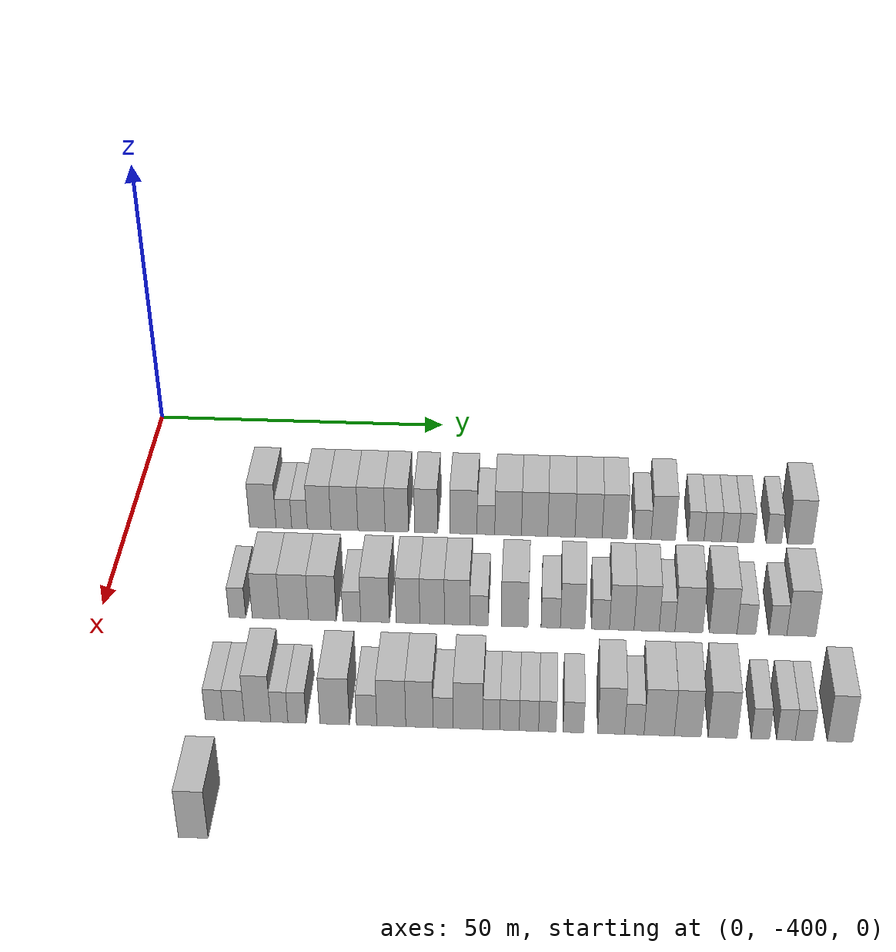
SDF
<sdf version="1.6">
 <world name="default">
  <model name="building_1">
   <static>1</static>
   <pose>25.0000 -377.8133 0 0.000000 0.000000 0.000000</pose>
   <link name="link">
    <pose>0 0 4.50 0 0 0</pose>
    <collision name="collision"><geometry><box><size>10.0000 4.3734 9.0000</size></box></geometry></collision>
    <visual name="visual">
     <cast_shadows>0</cast_shadows>
     <geometry><box><size>10.0000 4.3734 9.0000</size></box></geometry>
     <material>
      <script>
       <uri>model://HANNAS_wall/materials/scripts</uri>
       <uri>model://HANNAS_wall/materials/textures</uri>
       <name>vrc/HANNAS_wall</name>
      </script>
     </material>
    </visual>
   </link>
  </model>
  <model name="building_2">
   <static>1</static>
   <pose>25.0000 -374.3436 0 0.000000 0.000000 0.000000</pose>
   <link name="link">
    <pose>0 0 3.00 0 0 0</pose>
    <collision name="collision"><geometry><box><size>10.0000 2.5658 6.0000</size></box></geometry></collision>
    <visual name="visual">
     <cast_shadows>0</cast_shadows>
     <geometry><box><size>10.0000 2.5658 6.0000</size></box></geometry>
     <material>
      <script>
       <uri>model://HANNAS_wall/materials/scripts</uri>
       <uri>model://HANNAS_wall/materials/textures</uri>
       <name>vrc/HANNAS_wall</name>
      </script>
     </material>
    </visual>
   </link>
  </model>
  <model name="building_3">
   <static>1</static>
   <pose>25.0000 -371.7761 0 0.000000 0.000000 0.000000</pose>
   <link name="link">
    <pose>0 0 3.00 0 0 0</pose>
    <collision name="collision"><geometry><box><size>10.0000 2.5692 6.0000</size></box></geometry></collision>
    <visual name="visual">
     <cast_shadows>0</cast_shadows>
     <geometry><box><size>10.0000 2.5692 6.0000</size></box></geometry>
     <material>
      <script>
       <uri>model://HANNAS_wall/materials/scripts</uri>
       <uri>model://HANNAS_wall/materials/textures</uri>
       <name>vrc/HANNAS_wall</name>
      </script>
     </material>
    </visual>
   </link>
  </model>
  <model name="building_4">
   <static>1</static>
   <pose>25.0000 -368.5401 0 0.000000 0.000000 0.000000</pose>
   <link name="link">
    <pose>0 0 4.50 0 0 0</pose>
    <collision name="collision"><geometry><box><size>10.0000 3.9030 9.0000</size></box></geometry></collision>
    <visual name="visual">
     <cast_shadows>0</cast_shadows>
     <geometry><box><size>10.0000 3.9030 9.0000</size></box></geometry>
     <material>
      <script>
       <uri>model://HANNAS_wall/materials/scripts</uri>
       <uri>model://HANNAS_wall/materials/textures</uri>
       <name>vrc/HANNAS_wall</name>
      </script>
     </material>
    </visual>
   </link>
  </model>
  <model name="building_5">
   <static>1</static>
   <pose>25.0000 -364.3790 0 0.000000 0.000000 0.000000</pose>
   <link name="link">
    <pose>0 0 4.50 0 0 0</pose>
    <collision name="collision"><geometry><box><size>10.0000 4.4191 9.0000</size></box></geometry></collision>
    <visual name="visual">
     <cast_shadows>0</cast_shadows>
     <geometry><box><size>10.0000 4.4191 9.0000</size></box></geometry>
     <material>
      <script>
       <uri>model://HANNAS_wall/materials/scripts</uri>
       <uri>model://HANNAS_wall/materials/textures</uri>
       <name>vrc/HANNAS_wall</name>
      </script>
     </material>
    </visual>
   </link>
  </model>
  <model name="building_6">
   <static>1</static>
   <pose>25.0000 -359.9447 0 0.000000 0.000000 0.000000</pose>
   <link name="link">
    <pose>0 0 4.50 0 0 0</pose>
    <collision name="collision"><geometry><box><size>10.0000 4.4495 9.0000</size></box></geometry></collision>
    <visual name="visual">
     <cast_shadows>0</cast_shadows>
     <geometry><box><size>10.0000 4.4495 9.0000</size></box></geometry>
     <material>
      <script>
       <uri>model://HANNAS_wall/materials/scripts</uri>
       <uri>model://HANNAS_wall/materials/textures</uri>
       <name>vrc/HANNAS_wall</name>
      </script>
     </material>
    </visual>
   </link>
  </model>
  <model name="building_7">
   <static>1</static>
   <pose>25.0000 -355.7959 0 0.000000 0.000000 0.000000</pose>
   <link name="link">
    <pose>0 0 4.50 0 0 0</pose>
    <collision name="collision"><geometry><box><size>10.0000 3.8482 9.0000</size></box></geometry></collision>
    <visual name="visual">
     <cast_shadows>0</cast_shadows>
     <geometry><box><size>10.0000 3.8482 9.0000</size></box></geometry>
     <material>
      <script>
       <uri>model://HANNAS_wall/materials/scripts</uri>
       <uri>model://HANNAS_wall/materials/textures</uri>
       <name>vrc/HANNAS_wall</name>
      </script>
     </material>
    </visual>
   </link>
  </model>
  <model name="building_8">
   <static>1</static>
   <pose>25.0000 -350.9902 0 0.000000 0.000000 0.000000</pose>
   <link name="link">
    <pose>0 0 4.50 0 0 0</pose>
    <collision name="collision"><geometry><box><size>10.0000 3.7632 9.0000</size></box></geometry></collision>
    <visual name="visual">
     <cast_shadows>0</cast_shadows>
     <geometry><box><size>10.0000 3.7632 9.0000</size></box></geometry>
     <material>
      <script>
       <uri>model://HANNAS_wall/materials/scripts</uri>
       <uri>model://HANNAS_wall/materials/textures</uri>
       <name>vrc/HANNAS_wall</name>
      </script>
     </material>
    </visual>
   </link>
  </model>
  <model name="building_9">
   <static>1</static>
   <pose>25.0000 -344.8796 0 0.000000 0.000000 0.000000</pose>
   <link name="link">
    <pose>0 0 4.50 0 0 0</pose>
    <collision name="collision"><geometry><box><size>10.0000 4.4580 9.0000</size></box></geometry></collision>
    <visual name="visual">
     <cast_shadows>0</cast_shadows>
     <geometry><box><size>10.0000 4.4580 9.0000</size></box></geometry>
     <material>
      <script>
       <uri>model://HANNAS_wall/materials/scripts</uri>
       <uri>model://HANNAS_wall/materials/textures</uri>
       <name>vrc/HANNAS_wall</name>
      </script>
     </material>
    </visual>
   </link>
  </model>
  <model name="building_10">
   <static>1</static>
   <pose>25.0000 -341.2085 0 0.000000 0.000000 0.000000</pose>
   <link name="link">
    <pose>0 0 3.00 0 0 0</pose>
    <collision name="collision"><geometry><box><size>10.0000 2.8842 6.0000</size></box></geometry></collision>
    <visual name="visual">
     <cast_shadows>0</cast_shadows>
     <geometry><box><size>10.0000 2.8842 6.0000</size></box></geometry>
     <material>
      <script>
       <uri>model://HANNAS_wall/materials/scripts</uri>
       <uri>model://HANNAS_wall/materials/textures</uri>
       <name>vrc/HANNAS_wall</name>
      </script>
     </material>
    </visual>
   </link>
  </model>
  <model name="building_11">
   <static>1</static>
   <pose>25.0000 -337.5871 0 0.000000 0.000000 0.000000</pose>
   <link name="link">
    <pose>0 0 4.50 0 0 0</pose>
    <collision name="collision"><geometry><box><size>10.0000 4.3585 9.0000</size></box></geometry></collision>
    <visual name="visual">
     <cast_shadows>0</cast_shadows>
     <geometry><box><size>10.0000 4.3585 9.0000</size></box></geometry>
     <material>
      <script>
       <uri>model://HANNAS_wall/materials/scripts</uri>
       <uri>model://HANNAS_wall/materials/textures</uri>
       <name>vrc/HANNAS_wall</name>
      </script>
     </material>
    </visual>
   </link>
  </model>
  <model name="building_12">
   <static>1</static>
   <pose>25.0000 -333.2720 0 0.000000 0.000000 0.000000</pose>
   <link name="link">
    <pose>0 0 4.50 0 0 0</pose>
    <collision name="collision"><geometry><box><size>10.0000 4.2718 9.0000</size></box></geometry></collision>
    <visual name="visual">
     <cast_shadows>0</cast_shadows>
     <geometry><box><size>10.0000 4.2718 9.0000</size></box></geometry>
     <material>
      <script>
       <uri>model://HANNAS_wall/materials/scripts</uri>
       <uri>model://HANNAS_wall/materials/textures</uri>
       <name>vrc/HANNAS_wall</name>
      </script>
     </material>
    </visual>
   </link>
  </model>
  <model name="building_13">
   <static>1</static>
   <pose>25.0000 -328.9158 0 0.000000 0.000000 0.000000</pose>
   <link name="link">
    <pose>0 0 4.50 0 0 0</pose>
    <collision name="collision"><geometry><box><size>10.0000 4.4406 9.0000</size></box></geometry></collision>
    <visual name="visual">
     <cast_shadows>0</cast_shadows>
     <geometry><box><size>10.0000 4.4406 9.0000</size></box></geometry>
     <material>
      <script>
       <uri>model://HANNAS_wall/materials/scripts</uri>
       <uri>model://HANNAS_wall/materials/textures</uri>
       <name>vrc/HANNAS_wall</name>
      </script>
     </material>
    </visual>
   </link>
  </model>
  <model name="building_14">
   <static>1</static>
   <pose>25.0000 -324.4931 0 0.000000 0.000000 0.000000</pose>
   <link name="link">
    <pose>0 0 4.50 0 0 0</pose>
    <collision name="collision"><geometry><box><size>10.0000 4.4049 9.0000</size></box></geometry></collision>
    <visual name="visual">
     <cast_shadows>0</cast_shadows>
     <geometry><box><size>10.0000 4.4049 9.0000</size></box></geometry>
     <material>
      <script>
       <uri>model://HANNAS_wall/materials/scripts</uri>
       <uri>model://HANNAS_wall/materials/textures</uri>
       <name>vrc/HANNAS_wall</name>
      </script>
     </material>
    </visual>
   </link>
  </model>
  <model name="building_15">
   <static>1</static>
   <pose>25.0000 -320.2556 0 0.000000 0.000000 0.000000</pose>
   <link name="link">
    <pose>0 0 4.50 0 0 0</pose>
    <collision name="collision"><geometry><box><size>10.0000 4.0702 9.0000</size></box></geometry></collision>
    <visual name="visual">
     <cast_shadows>0</cast_shadows>
     <geometry><box><size>10.0000 4.0702 9.0000</size></box></geometry>
     <material>
      <script>
       <uri>model://HANNAS_wall/materials/scripts</uri>
       <uri>model://HANNAS_wall/materials/textures</uri>
       <name>vrc/HANNAS_wall</name>
      </script>
     </material>
    </visual>
   </link>
  </model>
  <model name="building_16">
   <static>1</static>
   <pose>25.0000 -315.7814 0 0.000000 0.000000 0.000000</pose>
   <link name="link">
    <pose>0 0 3.00 0 0 0</pose>
    <collision name="collision"><geometry><box><size>10.0000 2.8782 6.0000</size></box></geometry></collision>
    <visual name="visual">
     <cast_shadows>0</cast_shadows>
     <geometry><box><size>10.0000 2.8782 6.0000</size></box></geometry>
     <material>
      <script>
       <uri>model://HANNAS_wall/materials/scripts</uri>
       <uri>model://HANNAS_wall/materials/textures</uri>
       <name>vrc/HANNAS_wall</name>
      </script>
     </material>
    </visual>
   </link>
  </model>
  <model name="building_17">
   <static>1</static>
   <pose>25.0000 -312.3662 0 0.000000 0.000000 0.000000</pose>
   <link name="link">
    <pose>0 0 4.50 0 0 0</pose>
    <collision name="collision"><geometry><box><size>10.0000 3.9522 9.0000</size></box></geometry></collision>
    <visual name="visual">
     <cast_shadows>0</cast_shadows>
     <geometry><box><size>10.0000 3.9522 9.0000</size></box></geometry>
     <material>
      <script>
       <uri>model://HANNAS_wall/materials/scripts</uri>
       <uri>model://HANNAS_wall/materials/textures</uri>
       <name>vrc/HANNAS_wall</name>
      </script>
     </material>
    </visual>
   </link>
  </model>
  <model name="building_18">
   <static>1</static>
   <pose>25.0000 -307.0753 0 0.000000 0.000000 0.000000</pose>
   <link name="link">
    <pose>0 0 3.00 0 0 0</pose>
    <collision name="collision"><geometry><box><size>10.0000 2.6295 6.0000</size></box></geometry></collision>
    <visual name="visual">
     <cast_shadows>0</cast_shadows>
     <geometry><box><size>10.0000 2.6295 6.0000</size></box></geometry>
     <material>
      <script>
       <uri>model://HANNAS_wall/materials/scripts</uri>
       <uri>model://HANNAS_wall/materials/textures</uri>
       <name>vrc/HANNAS_wall</name>
      </script>
     </material>
    </visual>
   </link>
  </model>
  <model name="building_19">
   <static>1</static>
   <pose>25.0000 -304.3711 0 0.000000 0.000000 0.000000</pose>
   <link name="link">
    <pose>0 0 3.00 0 0 0</pose>
    <collision name="collision"><geometry><box><size>10.0000 2.7791 6.0000</size></box></geometry></collision>
    <visual name="visual">
     <cast_shadows>0</cast_shadows>
     <geometry><box><size>10.0000 2.7791 6.0000</size></box></geometry>
     <material>
      <script>
       <uri>model://HANNAS_wall/materials/scripts</uri>
       <uri>model://HANNAS_wall/materials/textures</uri>
       <name>vrc/HANNAS_wall</name>
      </script>
     </material>
    </visual>
   </link>
  </model>
  <model name="building_20">
   <static>1</static>
   <pose>25.0000 -301.6274 0 0.000000 0.000000 0.000000</pose>
   <link name="link">
    <pose>0 0 3.00 0 0 0</pose>
    <collision name="collision"><geometry><box><size>10.0000 2.7081 6.0000</size></box></geometry></collision>
    <visual name="visual">
     <cast_shadows>0</cast_shadows>
     <geometry><box><size>10.0000 2.7081 6.0000</size></box></geometry>
     <material>
      <script>
       <uri>model://HANNAS_wall/materials/scripts</uri>
       <uri>model://HANNAS_wall/materials/textures</uri>
       <name>vrc/HANNAS_wall</name>
      </script>
     </material>
    </visual>
   </link>
  </model>
  <model name="building_21">
   <static>1</static>
   <pose>25.0000 -298.9792 0 0.000000 0.000000 0.000000</pose>
   <link name="link">
    <pose>0 0 3.00 0 0 0</pose>
    <collision name="collision"><geometry><box><size>10.0000 2.5884 6.0000</size></box></geometry></collision>
    <visual name="visual">
     <cast_shadows>0</cast_shadows>
     <geometry><box><size>10.0000 2.5884 6.0000</size></box></geometry>
     <material>
      <script>
       <uri>model://HANNAS_wall/materials/scripts</uri>
       <uri>model://HANNAS_wall/materials/textures</uri>
       <name>vrc/HANNAS_wall</name>
      </script>
     </material>
    </visual>
   </link>
  </model>
  <model name="building_22">
   <static>1</static>
   <pose>25.0000 -294.4609 0 0.000000 0.000000 0.000000</pose>
   <link name="link">
    <pose>0 0 3.00 0 0 0</pose>
    <collision name="collision"><geometry><box><size>10.0000 2.4483 6.0000</size></box></geometry></collision>
    <visual name="visual">
     <cast_shadows>0</cast_shadows>
     <geometry><box><size>10.0000 2.4483 6.0000</size></box></geometry>
     <material>
      <script>
       <uri>model://HANNAS_wall/materials/scripts</uri>
       <uri>model://HANNAS_wall/materials/textures</uri>
       <name>vrc/HANNAS_wall</name>
      </script>
     </material>
    </visual>
   </link>
  </model>
  <model name="building_23">
   <static>1</static>
   <pose>25.0000 -290.2139 0 0.000000 0.000000 0.000000</pose>
   <link name="link">
    <pose>0 0 4.50 0 0 0</pose>
    <collision name="collision"><geometry><box><size>10.0000 4.0456 9.0000</size></box></geometry></collision>
    <visual name="visual">
     <cast_shadows>0</cast_shadows>
     <geometry><box><size>10.0000 4.0456 9.0000</size></box></geometry>
     <material>
      <script>
       <uri>model://HANNAS_wall/materials/scripts</uri>
       <uri>model://HANNAS_wall/materials/textures</uri>
       <name>vrc/HANNAS_wall</name>
      </script>
     </material>
    </visual>
   </link>
  </model>
  <model name="building_189">
   <static>1</static>
   <pose>47.0000 -378.6992 0 0.000000 0.000000 0.000000</pose>
   <link name="link">
    <pose>0 0 3.00 0 0 0</pose>
    <collision name="collision"><geometry><box><size>10.0000 2.6017 6.0000</size></box></geometry></collision>
    <visual name="visual">
     <cast_shadows>0</cast_shadows>
     <geometry><box><size>10.0000 2.6017 6.0000</size></box></geometry>
     <material>
      <script>
       <uri>model://HANNAS_wall/materials/scripts</uri>
       <uri>model://HANNAS_wall/materials/textures</uri>
       <name>vrc/HANNAS_wall</name>
      </script>
     </material>
    </visual>
   </link>
  </model>
  <model name="building_190">
   <static>1</static>
   <pose>47.0000 -374.2788 0 0.000000 0.000000 0.000000</pose>
   <link name="link">
    <pose>0 0 4.50 0 0 0</pose>
    <collision name="collision"><geometry><box><size>10.0000 4.2390 9.0000</size></box></geometry></collision>
    <visual name="visual">
     <cast_shadows>0</cast_shadows>
     <geometry><box><size>10.0000 4.2390 9.0000</size></box></geometry>
     <material>
      <script>
       <uri>model://HANNAS_wall/materials/scripts</uri>
       <uri>model://HANNAS_wall/materials/textures</uri>
       <name>vrc/HANNAS_wall</name>
      </script>
     </material>
    </visual>
   </link>
  </model>
  <model name="building_191">
   <static>1</static>
   <pose>47.0000 -369.9172 0 0.000000 0.000000 0.000000</pose>
   <link name="link">
    <pose>0 0 4.50 0 0 0</pose>
    <collision name="collision"><geometry><box><size>10.0000 4.4841 9.0000</size></box></geometry></collision>
    <visual name="visual">
     <cast_shadows>0</cast_shadows>
     <geometry><box><size>10.0000 4.4841 9.0000</size></box></geometry>
     <material>
      <script>
       <uri>model://HANNAS_wall/materials/scripts</uri>
       <uri>model://HANNAS_wall/materials/textures</uri>
       <name>vrc/HANNAS_wall</name>
      </script>
     </material>
    </visual>
   </link>
  </model>
  <model name="building_192">
   <static>1</static>
   <pose>47.0000 -365.5258 0 0.000000 0.000000 0.000000</pose>
   <link name="link">
    <pose>0 0 4.50 0 0 0</pose>
    <collision name="collision"><geometry><box><size>10.0000 4.2989 9.0000</size></box></geometry></collision>
    <visual name="visual">
     <cast_shadows>0</cast_shadows>
     <geometry><box><size>10.0000 4.2989 9.0000</size></box></geometry>
     <material>
      <script>
       <uri>model://HANNAS_wall/materials/scripts</uri>
       <uri>model://HANNAS_wall/materials/textures</uri>
       <name>vrc/HANNAS_wall</name>
      </script>
     </material>
    </visual>
   </link>
  </model>
  <model name="building_193">
   <static>1</static>
   <pose>47.0000 -360.9871 0 0.000000 0.000000 0.000000</pose>
   <link name="link">
    <pose>0 0 3.00 0 0 0</pose>
    <collision name="collision"><geometry><box><size>10.0000 2.7786 6.0000</size></box></geometry></collision>
    <visual name="visual">
     <cast_shadows>0</cast_shadows>
     <geometry><box><size>10.0000 2.7786 6.0000</size></box></geometry>
     <material>
      <script>
       <uri>model://HANNAS_wall/materials/scripts</uri>
       <uri>model://HANNAS_wall/materials/textures</uri>
       <name>vrc/HANNAS_wall</name>
      </script>
     </material>
    </visual>
   </link>
  </model>
  <model name="building_194">
   <static>1</static>
   <pose>47.0000 -357.3831 0 0.000000 0.000000 0.000000</pose>
   <link name="link">
    <pose>0 0 4.50 0 0 0</pose>
    <collision name="collision"><geometry><box><size>10.0000 4.4293 9.0000</size></box></geometry></collision>
    <visual name="visual">
     <cast_shadows>0</cast_shadows>
     <geometry><box><size>10.0000 4.4293 9.0000</size></box></geometry>
     <material>
      <script>
       <uri>model://HANNAS_wall/materials/scripts</uri>
       <uri>model://HANNAS_wall/materials/textures</uri>
       <name>vrc/HANNAS_wall</name>
      </script>
     </material>
    </visual>
   </link>
  </model>
  <model name="building_195">
   <static>1</static>
   <pose>47.0000 -352.3365 0 0.000000 0.000000 0.000000</pose>
   <link name="link">
    <pose>0 0 4.50 0 0 0</pose>
    <collision name="collision"><geometry><box><size>10.0000 3.6637 9.0000</size></box></geometry></collision>
    <visual name="visual">
     <cast_shadows>0</cast_shadows>
     <geometry><box><size>10.0000 3.6637 9.0000</size></box></geometry>
     <material>
      <script>
       <uri>model://HANNAS_wall/materials/scripts</uri>
       <uri>model://HANNAS_wall/materials/textures</uri>
       <name>vrc/HANNAS_wall</name>
      </script>
     </material>
    </visual>
   </link>
  </model>
  <model name="building_196">
   <static>1</static>
   <pose>47.0000 -348.6193 0 0.000000 0.000000 0.000000</pose>
   <link name="link">
    <pose>0 0 4.50 0 0 0</pose>
    <collision name="collision"><geometry><box><size>10.0000 3.7708 9.0000</size></box></geometry></collision>
    <visual name="visual">
     <cast_shadows>0</cast_shadows>
     <geometry><box><size>10.0000 3.7708 9.0000</size></box></geometry>
     <material>
      <script>
       <uri>model://HANNAS_wall/materials/scripts</uri>
       <uri>model://HANNAS_wall/materials/textures</uri>
       <name>vrc/HANNAS_wall</name>
      </script>
     </material>
    </visual>
   </link>
  </model>
  <model name="building_197">
   <static>1</static>
   <pose>47.0000 -344.7991 0 0.000000 0.000000 0.000000</pose>
   <link name="link">
    <pose>0 0 4.50 0 0 0</pose>
    <collision name="collision"><geometry><box><size>10.0000 3.8694 9.0000</size></box></geometry></collision>
    <visual name="visual">
     <cast_shadows>0</cast_shadows>
     <geometry><box><size>10.0000 3.8694 9.0000</size></box></geometry>
     <material>
      <script>
       <uri>model://HANNAS_wall/materials/scripts</uri>
       <uri>model://HANNAS_wall/materials/textures</uri>
       <name>vrc/HANNAS_wall</name>
      </script>
     </material>
    </visual>
   </link>
  </model>
  <model name="building_198">
   <static>1</static>
   <pose>47.0000 -341.4460 0 0.000000 0.000000 0.000000</pose>
   <link name="link">
    <pose>0 0 3.00 0 0 0</pose>
    <collision name="collision"><geometry><box><size>10.0000 2.8368 6.0000</size></box></geometry></collision>
    <visual name="visual">
     <cast_shadows>0</cast_shadows>
     <geometry><box><size>10.0000 2.8368 6.0000</size></box></geometry>
     <material>
      <script>
       <uri>model://HANNAS_wall/materials/scripts</uri>
       <uri>model://HANNAS_wall/materials/textures</uri>
       <name>vrc/HANNAS_wall</name>
      </script>
     </material>
    </visual>
   </link>
  </model>
  <model name="building_199">
   <static>1</static>
   <pose>47.0000 -335.9669 0 0.000000 0.000000 0.000000</pose>
   <link name="link">
    <pose>0 0 4.50 0 0 0</pose>
    <collision name="collision"><geometry><box><size>10.0000 4.1215 9.0000</size></box></geometry></collision>
    <visual name="visual">
     <cast_shadows>0</cast_shadows>
     <geometry><box><size>10.0000 4.1215 9.0000</size></box></geometry>
     <material>
      <script>
       <uri>model://HANNAS_wall/materials/scripts</uri>
       <uri>model://HANNAS_wall/materials/textures</uri>
       <name>vrc/HANNAS_wall</name>
      </script>
     </material>
    </visual>
   </link>
  </model>
  <model name="building_200">
   <static>1</static>
   <pose>47.0000 -330.4344 0 0.000000 0.000000 0.000000</pose>
   <link name="link">
    <pose>0 0 3.00 0 0 0</pose>
    <collision name="collision"><geometry><box><size>10.0000 2.9434 6.0000</size></box></geometry></collision>
    <visual name="visual">
     <cast_shadows>0</cast_shadows>
     <geometry><box><size>10.0000 2.9434 6.0000</size></box></geometry>
     <material>
      <script>
       <uri>model://HANNAS_wall/materials/scripts</uri>
       <uri>model://HANNAS_wall/materials/textures</uri>
       <name>vrc/HANNAS_wall</name>
      </script>
     </material>
    </visual>
   </link>
  </model>
  <model name="building_201">
   <static>1</static>
   <pose>47.0000 -327.0908 0 0.000000 0.000000 0.000000</pose>
   <link name="link">
    <pose>0 0 4.50 0 0 0</pose>
    <collision name="collision"><geometry><box><size>10.0000 3.7439 9.0000</size></box></geometry></collision>
    <visual name="visual">
     <cast_shadows>0</cast_shadows>
     <geometry><box><size>10.0000 3.7439 9.0000</size></box></geometry>
     <material>
      <script>
       <uri>model://HANNAS_wall/materials/scripts</uri>
       <uri>model://HANNAS_wall/materials/textures</uri>
       <name>vrc/HANNAS_wall</name>
      </script>
     </material>
    </visual>
   </link>
  </model>
  <model name="building_202">
   <static>1</static>
   <pose>47.0000 -322.8381 0 0.000000 0.000000 0.000000</pose>
   <link name="link">
    <pose>0 0 3.00 0 0 0</pose>
    <collision name="collision"><geometry><box><size>10.0000 2.7614 6.0000</size></box></geometry></collision>
    <visual name="visual">
     <cast_shadows>0</cast_shadows>
     <geometry><box><size>10.0000 2.7614 6.0000</size></box></geometry>
     <material>
      <script>
       <uri>model://HANNAS_wall/materials/scripts</uri>
       <uri>model://HANNAS_wall/materials/textures</uri>
       <name>vrc/HANNAS_wall</name>
      </script>
     </material>
    </visual>
   </link>
  </model>
  <model name="building_203">
   <static>1</static>
   <pose>47.0000 -319.5809 0 0.000000 0.000000 0.000000</pose>
   <link name="link">
    <pose>0 0 4.50 0 0 0</pose>
    <collision name="collision"><geometry><box><size>10.0000 3.7529 9.0000</size></box></geometry></collision>
    <visual name="visual">
     <cast_shadows>0</cast_shadows>
     <geometry><box><size>10.0000 3.7529 9.0000</size></box></geometry>
     <material>
      <script>
       <uri>model://HANNAS_wall/materials/scripts</uri>
       <uri>model://HANNAS_wall/materials/textures</uri>
       <name>vrc/HANNAS_wall</name>
      </script>
     </material>
    </visual>
   </link>
  </model>
  <model name="building_204">
   <static>1</static>
   <pose>47.0000 -315.7952 0 0.000000 0.000000 0.000000</pose>
   <link name="link">
    <pose>0 0 4.50 0 0 0</pose>
    <collision name="collision"><geometry><box><size>10.0000 3.8186 9.0000</size></box></geometry></collision>
    <visual name="visual">
     <cast_shadows>0</cast_shadows>
     <geometry><box><size>10.0000 3.8186 9.0000</size></box></geometry>
     <material>
      <script>
       <uri>model://HANNAS_wall/materials/scripts</uri>
       <uri>model://HANNAS_wall/materials/textures</uri>
       <name>vrc/HANNAS_wall</name>
      </script>
     </material>
    </visual>
   </link>
  </model>
  <model name="building_205">
   <static>1</static>
   <pose>47.0000 -312.6814 0 0.000000 0.000000 0.000000</pose>
   <link name="link">
    <pose>0 0 3.00 0 0 0</pose>
    <collision name="collision"><geometry><box><size>10.0000 2.4089 6.0000</size></box></geometry></collision>
    <visual name="visual">
     <cast_shadows>0</cast_shadows>
     <geometry><box><size>10.0000 2.4089 6.0000</size></box></geometry>
     <material>
      <script>
       <uri>model://HANNAS_wall/materials/scripts</uri>
       <uri>model://HANNAS_wall/materials/textures</uri>
       <name>vrc/HANNAS_wall</name>
      </script>
     </material>
    </visual>
   </link>
  </model>
  <model name="building_206">
   <static>1</static>
   <pose>47.0000 -309.3602 0 0.000000 0.000000 0.000000</pose>
   <link name="link">
    <pose>0 0 4.50 0 0 0</pose>
    <collision name="collision"><geometry><box><size>10.0000 4.2334 9.0000</size></box></geometry></collision>
    <visual name="visual">
     <cast_shadows>0</cast_shadows>
     <geometry><box><size>10.0000 4.2334 9.0000</size></box></geometry>
     <material>
      <script>
       <uri>model://HANNAS_wall/materials/scripts</uri>
       <uri>model://HANNAS_wall/materials/textures</uri>
       <name>vrc/HANNAS_wall</name>
      </script>
     </material>
    </visual>
   </link>
  </model>
  <model name="building_207">
   <static>1</static>
   <pose>47.0000 -304.1451 0 0.000000 0.000000 0.000000</pose>
   <link name="link">
    <pose>0 0 4.50 0 0 0</pose>
    <collision name="collision"><geometry><box><size>10.0000 4.1968 9.0000</size></box></geometry></collision>
    <visual name="visual">
     <cast_shadows>0</cast_shadows>
     <geometry><box><size>10.0000 4.1968 9.0000</size></box></geometry>
     <material>
      <script>
       <uri>model://HANNAS_wall/materials/scripts</uri>
       <uri>model://HANNAS_wall/materials/textures</uri>
       <name>vrc/HANNAS_wall</name>
      </script>
     </material>
    </visual>
   </link>
  </model>
  <model name="building_208">
   <static>1</static>
   <pose>47.0000 -300.6191 0 0.000000 0.000000 0.000000</pose>
   <link name="link">
    <pose>0 0 3.00 0 0 0</pose>
    <collision name="collision"><geometry><box><size>10.0000 2.8551 6.0000</size></box></geometry></collision>
    <visual name="visual">
     <cast_shadows>0</cast_shadows>
     <geometry><box><size>10.0000 2.8551 6.0000</size></box></geometry>
     <material>
      <script>
       <uri>model://HANNAS_wall/materials/scripts</uri>
       <uri>model://HANNAS_wall/materials/textures</uri>
       <name>vrc/HANNAS_wall</name>
      </script>
     </material>
    </visual>
   </link>
  </model>
  <model name="building_209">
   <static>1</static>
   <pose>47.0000 -295.8400 0 0.000000 0.000000 0.000000</pose>
   <link name="link">
    <pose>0 0 3.00 0 0 0</pose>
    <collision name="collision"><geometry><box><size>10.0000 2.7033 6.0000</size></box></geometry></collision>
    <visual name="visual">
     <cast_shadows>0</cast_shadows>
     <geometry><box><size>10.0000 2.7033 6.0000</size></box></geometry>
     <material>
      <script>
       <uri>model://HANNAS_wall/materials/scripts</uri>
       <uri>model://HANNAS_wall/materials/textures</uri>
       <name>vrc/HANNAS_wall</name>
      </script>
     </material>
    </visual>
   </link>
  </model>
  <model name="building_210">
   <static>1</static>
   <pose>47.0000 -292.3002 0 0.000000 0.000000 0.000000</pose>
   <link name="link">
    <pose>0 0 4.50 0 0 0</pose>
    <collision name="collision"><geometry><box><size>10.0000 4.3763 9.0000</size></box></geometry></collision>
    <visual name="visual">
     <cast_shadows>0</cast_shadows>
     <geometry><box><size>10.0000 4.3763 9.0000</size></box></geometry>
     <material>
      <script>
       <uri>model://HANNAS_wall/materials/scripts</uri>
       <uri>model://HANNAS_wall/materials/textures</uri>
       <name>vrc/HANNAS_wall</name>
      </script>
     </material>
    </visual>
   </link>
  </model>
  <model name="building_369">
   <static>1</static>
   <pose>69.0000 -378.6508 0 0.000000 0.000000 0.000000</pose>
   <link name="link">
    <pose>0 0 3.00 0 0 0</pose>
    <collision name="collision"><geometry><box><size>10.0000 2.6985 6.0000</size></box></geometry></collision>
    <visual name="visual">
     <cast_shadows>0</cast_shadows>
     <geometry><box><size>10.0000 2.6985 6.0000</size></box></geometry>
     <material>
      <script>
       <uri>model://HANNAS_wall/materials/scripts</uri>
       <uri>model://HANNAS_wall/materials/textures</uri>
       <name>vrc/HANNAS_wall</name>
      </script>
     </material>
    </visual>
   </link>
  </model>
  <model name="building_370">
   <static>1</static>
   <pose>69.0000 -375.8182 0 0.000000 0.000000 0.000000</pose>
   <link name="link">
    <pose>0 0 3.00 0 0 0</pose>
    <collision name="collision"><geometry><box><size>10.0000 2.9665 6.0000</size></box></geometry></collision>
    <visual name="visual">
     <cast_shadows>0</cast_shadows>
     <geometry><box><size>10.0000 2.9665 6.0000</size></box></geometry>
     <material>
      <script>
       <uri>model://HANNAS_wall/materials/scripts</uri>
       <uri>model://HANNAS_wall/materials/textures</uri>
       <name>vrc/HANNAS_wall</name>
      </script>
     </material>
    </visual>
   </link>
  </model>
  <model name="building_371">
   <static>1</static>
   <pose>69.0000 -372.4311 0 0.000000 0.000000 0.000000</pose>
   <link name="link">
    <pose>0 0 4.50 0 0 0</pose>
    <collision name="collision"><geometry><box><size>10.0000 3.8079 9.0000</size></box></geometry></collision>
    <visual name="visual">
     <cast_shadows>0</cast_shadows>
     <geometry><box><size>10.0000 3.8079 9.0000</size></box></geometry>
     <material>
      <script>
       <uri>model://HANNAS_wall/materials/scripts</uri>
       <uri>model://HANNAS_wall/materials/textures</uri>
       <name>vrc/HANNAS_wall</name>
      </script>
     </material>
    </visual>
   </link>
  </model>
  <model name="building_372">
   <static>1</static>
   <pose>69.0000 -369.2811 0 0.000000 0.000000 0.000000</pose>
   <link name="link">
    <pose>0 0 3.00 0 0 0</pose>
    <collision name="collision"><geometry><box><size>10.0000 2.4921 6.0000</size></box></geometry></collision>
    <visual name="visual">
     <cast_shadows>0</cast_shadows>
     <geometry><box><size>10.0000 2.4921 6.0000</size></box></geometry>
     <material>
      <script>
       <uri>model://HANNAS_wall/materials/scripts</uri>
       <uri>model://HANNAS_wall/materials/textures</uri>
       <name>vrc/HANNAS_wall</name>
      </script>
     </material>
    </visual>
   </link>
  </model>
  <model name="building_373">
   <static>1</static>
   <pose>69.0000 -366.7171 0 0.000000 0.000000 0.000000</pose>
   <link name="link">
    <pose>0 0 3.00 0 0 0</pose>
    <collision name="collision"><geometry><box><size>10.0000 2.6359 6.0000</size></box></geometry></collision>
    <visual name="visual">
     <cast_shadows>0</cast_shadows>
     <geometry><box><size>10.0000 2.6359 6.0000</size></box></geometry>
     <material>
      <script>
       <uri>model://HANNAS_wall/materials/scripts</uri>
       <uri>model://HANNAS_wall/materials/textures</uri>
       <name>vrc/HANNAS_wall</name>
      </script>
     </material>
    </visual>
   </link>
  </model>
  <model name="building_374">
   <static>1</static>
   <pose>69.0000 -361.2681 0 0.000000 0.000000 0.000000</pose>
   <link name="link">
    <pose>0 0 4.50 0 0 0</pose>
    <collision name="collision"><geometry><box><size>10.0000 4.2621 9.0000</size></box></geometry></collision>
    <visual name="visual">
     <cast_shadows>0</cast_shadows>
     <geometry><box><size>10.0000 4.2621 9.0000</size></box></geometry>
     <material>
      <script>
       <uri>model://HANNAS_wall/materials/scripts</uri>
       <uri>model://HANNAS_wall/materials/textures</uri>
       <name>vrc/HANNAS_wall</name>
      </script>
     </material>
    </visual>
   </link>
  </model>
  <model name="building_375">
   <static>1</static>
   <pose>69.0000 -356.6645 0 0.000000 0.000000 0.000000</pose>
   <link name="link">
    <pose>0 0 3.00 0 0 0</pose>
    <collision name="collision"><geometry><box><size>10.0000 2.9451 6.0000</size></box></geometry></collision>
    <visual name="visual">
     <cast_shadows>0</cast_shadows>
     <geometry><box><size>10.0000 2.9451 6.0000</size></box></geometry>
     <material>
      <script>
       <uri>model://HANNAS_wall/materials/scripts</uri>
       <uri>model://HANNAS_wall/materials/textures</uri>
       <name>vrc/HANNAS_wall</name>
      </script>
     </material>
    </visual>
   </link>
  </model>
  <model name="building_376">
   <static>1</static>
   <pose>69.0000 -353.1057 0 0.000000 0.000000 0.000000</pose>
   <link name="link">
    <pose>0 0 4.50 0 0 0</pose>
    <collision name="collision"><geometry><box><size>10.0000 4.1725 9.0000</size></box></geometry></collision>
    <visual name="visual">
     <cast_shadows>0</cast_shadows>
     <geometry><box><size>10.0000 4.1725 9.0000</size></box></geometry>
     <material>
      <script>
       <uri>model://HANNAS_wall/materials/scripts</uri>
       <uri>model://HANNAS_wall/materials/textures</uri>
       <name>vrc/HANNAS_wall</name>
      </script>
     </material>
    </visual>
   </link>
  </model>
  <model name="building_377">
   <static>1</static>
   <pose>69.0000 -349.0631 0 0.000000 0.000000 0.000000</pose>
   <link name="link">
    <pose>0 0 4.50 0 0 0</pose>
    <collision name="collision"><geometry><box><size>10.0000 3.9126 9.0000</size></box></geometry></collision>
    <visual name="visual">
     <cast_shadows>0</cast_shadows>
     <geometry><box><size>10.0000 3.9126 9.0000</size></box></geometry>
     <material>
      <script>
       <uri>model://HANNAS_wall/materials/scripts</uri>
       <uri>model://HANNAS_wall/materials/textures</uri>
       <name>vrc/HANNAS_wall</name>
      </script>
     </material>
    </visual>
   </link>
  </model>
  <model name="building_378">
   <static>1</static>
   <pose>69.0000 -345.6571 0 0.000000 0.000000 0.000000</pose>
   <link name="link">
    <pose>0 0 3.00 0 0 0</pose>
    <collision name="collision"><geometry><box><size>10.0000 2.8993 6.0000</size></box></geometry></collision>
    <visual name="visual">
     <cast_shadows>0</cast_shadows>
     <geometry><box><size>10.0000 2.8993 6.0000</size></box></geometry>
     <material>
      <script>
       <uri>model://HANNAS_wall/materials/scripts</uri>
       <uri>model://HANNAS_wall/materials/textures</uri>
       <name>vrc/HANNAS_wall</name>
      </script>
     </material>
    </visual>
   </link>
  </model>
  <model name="building_379">
   <static>1</static>
   <pose>69.0000 -342.0660 0 0.000000 0.000000 0.000000</pose>
   <link name="link">
    <pose>0 0 4.50 0 0 0</pose>
    <collision name="collision"><geometry><box><size>10.0000 4.2829 9.0000</size></box></geometry></collision>
    <visual name="visual">
     <cast_shadows>0</cast_shadows>
     <geometry><box><size>10.0000 4.2829 9.0000</size></box></geometry>
     <material>
      <script>
       <uri>model://HANNAS_wall/materials/scripts</uri>
       <uri>model://HANNAS_wall/materials/textures</uri>
       <name>vrc/HANNAS_wall</name>
      </script>
     </material>
    </visual>
   </link>
  </model>
  <model name="building_380">
   <static>1</static>
   <pose>69.0000 -338.7169 0 0.000000 0.000000 0.000000</pose>
   <link name="link">
    <pose>0 0 3.00 0 0 0</pose>
    <collision name="collision"><geometry><box><size>10.0000 2.4152 6.0000</size></box></geometry></collision>
    <visual name="visual">
     <cast_shadows>0</cast_shadows>
     <geometry><box><size>10.0000 2.4152 6.0000</size></box></geometry>
     <material>
      <script>
       <uri>model://HANNAS_wall/materials/scripts</uri>
       <uri>model://HANNAS_wall/materials/textures</uri>
       <name>vrc/HANNAS_wall</name>
      </script>
     </material>
    </visual>
   </link>
  </model>
  <model name="building_381">
   <static>1</static>
   <pose>69.0000 -336.1175 0 0.000000 0.000000 0.000000</pose>
   <link name="link">
    <pose>0 0 3.00 0 0 0</pose>
    <collision name="collision"><geometry><box><size>10.0000 2.7835 6.0000</size></box></geometry></collision>
    <visual name="visual">
     <cast_shadows>0</cast_shadows>
     <geometry><box><size>10.0000 2.7835 6.0000</size></box></geometry>
     <material>
      <script>
       <uri>model://HANNAS_wall/materials/scripts</uri>
       <uri>model://HANNAS_wall/materials/textures</uri>
       <name>vrc/HANNAS_wall</name>
      </script>
     </material>
    </visual>
   </link>
  </model>
  <model name="building_382">
   <static>1</static>
   <pose>69.0000 -333.3422 0 0.000000 0.000000 0.000000</pose>
   <link name="link">
    <pose>0 0 3.00 0 0 0</pose>
    <collision name="collision"><geometry><box><size>10.0000 2.7671 6.0000</size></box></geometry></collision>
    <visual name="visual">
     <cast_shadows>0</cast_shadows>
     <geometry><box><size>10.0000 2.7671 6.0000</size></box></geometry>
     <material>
      <script>
       <uri>model://HANNAS_wall/materials/scripts</uri>
       <uri>model://HANNAS_wall/materials/textures</uri>
       <name>vrc/HANNAS_wall</name>
      </script>
     </material>
    </visual>
   </link>
  </model>
  <model name="building_383">
   <static>1</static>
   <pose>69.0000 -330.7086 0 0.000000 0.000000 0.000000</pose>
   <link name="link">
    <pose>0 0 3.00 0 0 0</pose>
    <collision name="collision"><geometry><box><size>10.0000 2.5001 6.0000</size></box></geometry></collision>
    <visual name="visual">
     <cast_shadows>0</cast_shadows>
     <geometry><box><size>10.0000 2.5001 6.0000</size></box></geometry>
     <material>
      <script>
       <uri>model://HANNAS_wall/materials/scripts</uri>
       <uri>model://HANNAS_wall/materials/textures</uri>
       <name>vrc/HANNAS_wall</name>
      </script>
     </material>
    </visual>
   </link>
  </model>
  <model name="building_384">
   <static>1</static>
   <pose>69.0000 -326.9874 0 0.000000 0.000000 0.000000</pose>
   <link name="link">
    <pose>0 0 3.00 0 0 0</pose>
    <collision name="collision"><geometry><box><size>10.0000 2.9423 6.0000</size></box></geometry></collision>
    <visual name="visual">
     <cast_shadows>0</cast_shadows>
     <geometry><box><size>10.0000 2.9423 6.0000</size></box></geometry>
     <material>
      <script>
       <uri>model://HANNAS_wall/materials/scripts</uri>
       <uri>model://HANNAS_wall/materials/textures</uri>
       <name>vrc/HANNAS_wall</name>
      </script>
     </material>
    </visual>
   </link>
  </model>
  <model name="building_385">
   <static>1</static>
   <pose>69.0000 -321.5907 0 0.000000 0.000000 0.000000</pose>
   <link name="link">
    <pose>0 0 4.50 0 0 0</pose>
    <collision name="collision"><geometry><box><size>10.0000 3.8512 9.0000</size></box></geometry></collision>
    <visual name="visual">
     <cast_shadows>0</cast_shadows>
     <geometry><box><size>10.0000 3.8512 9.0000</size></box></geometry>
     <material>
      <script>
       <uri>model://HANNAS_wall/materials/scripts</uri>
       <uri>model://HANNAS_wall/materials/textures</uri>
       <name>vrc/HANNAS_wall</name>
      </script>
     </material>
    </visual>
   </link>
  </model>
  <model name="building_386">
   <static>1</static>
   <pose>69.0000 -318.2784 0 0.000000 0.000000 0.000000</pose>
   <link name="link">
    <pose>0 0 3.00 0 0 0</pose>
    <collision name="collision"><geometry><box><size>10.0000 2.7734 6.0000</size></box></geometry></collision>
    <visual name="visual">
     <cast_shadows>0</cast_shadows>
     <geometry><box><size>10.0000 2.7734 6.0000</size></box></geometry>
     <material>
      <script>
       <uri>model://HANNAS_wall/materials/scripts</uri>
       <uri>model://HANNAS_wall/materials/textures</uri>
       <name>vrc/HANNAS_wall</name>
      </script>
     </material>
    </visual>
   </link>
  </model>
  <model name="building_387">
   <static>1</static>
   <pose>69.0000 -314.7357 0 0.000000 0.000000 0.000000</pose>
   <link name="link">
    <pose>0 0 4.50 0 0 0</pose>
    <collision name="collision"><geometry><box><size>10.0000 4.3121 9.0000</size></box></geometry></collision>
    <visual name="visual">
     <cast_shadows>0</cast_shadows>
     <geometry><box><size>10.0000 4.3121 9.0000</size></box></geometry>
     <material>
      <script>
       <uri>model://HANNAS_wall/materials/scripts</uri>
       <uri>model://HANNAS_wall/materials/textures</uri>
       <name>vrc/HANNAS_wall</name>
      </script>
     </material>
    </visual>
   </link>
  </model>
  <model name="building_388">
   <static>1</static>
   <pose>69.0000 -310.6704 0 0.000000 0.000000 0.000000</pose>
   <link name="link">
    <pose>0 0 4.50 0 0 0</pose>
    <collision name="collision"><geometry><box><size>10.0000 3.8184 9.0000</size></box></geometry></collision>
    <visual name="visual">
     <cast_shadows>0</cast_shadows>
     <geometry><box><size>10.0000 3.8184 9.0000</size></box></geometry>
     <material>
      <script>
       <uri>model://HANNAS_wall/materials/scripts</uri>
       <uri>model://HANNAS_wall/materials/textures</uri>
       <name>vrc/HANNAS_wall</name>
      </script>
     </material>
    </visual>
   </link>
  </model>
  <model name="building_389">
   <static>1</static>
   <pose>69.0000 -305.6997 0 0.000000 0.000000 0.000000</pose>
   <link name="link">
    <pose>0 0 4.50 0 0 0</pose>
    <collision name="collision"><geometry><box><size>10.0000 4.1231 9.0000</size></box></geometry></collision>
    <visual name="visual">
     <cast_shadows>0</cast_shadows>
     <geometry><box><size>10.0000 4.1231 9.0000</size></box></geometry>
     <material>
      <script>
       <uri>model://HANNAS_wall/materials/scripts</uri>
       <uri>model://HANNAS_wall/materials/textures</uri>
       <name>vrc/HANNAS_wall</name>
      </script>
     </material>
    </visual>
   </link>
  </model>
  <model name="building_390">
   <static>1</static>
   <pose>69.0000 -300.3395 0 0.000000 0.000000 0.000000</pose>
   <link name="link">
    <pose>0 0 3.00 0 0 0</pose>
    <collision name="collision"><geometry><box><size>10.0000 2.5973 6.0000</size></box></geometry></collision>
    <visual name="visual">
     <cast_shadows>0</cast_shadows>
     <geometry><box><size>10.0000 2.5973 6.0000</size></box></geometry>
     <material>
      <script>
       <uri>model://HANNAS_wall/materials/scripts</uri>
       <uri>model://HANNAS_wall/materials/textures</uri>
       <name>vrc/HANNAS_wall</name>
      </script>
     </material>
    </visual>
   </link>
  </model>
  <model name="building_391">
   <static>1</static>
   <pose>69.0000 -296.7202 0 0.000000 0.000000 0.000000</pose>
   <link name="link">
    <pose>0 0 3.00 0 0 0</pose>
    <collision name="collision"><geometry><box><size>10.0000 2.6412 6.0000</size></box></geometry></collision>
    <visual name="visual">
     <cast_shadows>0</cast_shadows>
     <geometry><box><size>10.0000 2.6412 6.0000</size></box></geometry>
     <material>
      <script>
       <uri>model://HANNAS_wall/materials/scripts</uri>
       <uri>model://HANNAS_wall/materials/textures</uri>
       <name>vrc/HANNAS_wall</name>
      </script>
     </material>
    </visual>
   </link>
  </model>
  <model name="building_392">
   <static>1</static>
   <pose>69.0000 -294.1322 0 0.000000 0.000000 0.000000</pose>
   <link name="link">
    <pose>0 0 3.00 0 0 0</pose>
    <collision name="collision"><geometry><box><size>10.0000 2.5347 6.0000</size></box></geometry></collision>
    <visual name="visual">
     <cast_shadows>0</cast_shadows>
     <geometry><box><size>10.0000 2.5347 6.0000</size></box></geometry>
     <material>
      <script>
       <uri>model://HANNAS_wall/materials/scripts</uri>
       <uri>model://HANNAS_wall/materials/textures</uri>
       <name>vrc/HANNAS_wall</name>
      </script>
     </material>
    </visual>
   </link>
  </model>
  <model name="building_393">
   <static>1</static>
   <pose>69.0000 -289.0631 0 0.000000 0.000000 0.000000</pose>
   <link name="link">
    <pose>0 0 4.50 0 0 0</pose>
    <collision name="collision"><geometry><box><size>10.0000 3.6036 9.0000</size></box></geometry></collision>
    <visual name="visual">
     <cast_shadows>0</cast_shadows>
     <geometry><box><size>10.0000 3.6036 9.0000</size></box></geometry>
     <material>
      <script>
       <uri>model://HANNAS_wall/materials/scripts</uri>
       <uri>model://HANNAS_wall/materials/textures</uri>
       <name>vrc/HANNAS_wall</name>
      </script>
     </material>
    </visual>
   </link>
  </model>
  <model name="building_554">
   <static>1</static>
   <pose>91.0000 -377.9903 0 0.000000 0.000000 0.000000</pose>
   <link name="link">
    <pose>0 0 4.50 0 0 0</pose>
    <collision name="collision"><geometry><box><size>10.0000 4.0194 9.0000</size></box></geometry></collision>
    <visual name="visual">
     <cast_shadows>0</cast_shadows>
     <geometry><box><size>10.0000 4.0194 9.0000</size></box></geometry>
     <material>
      <script>
       <uri>model://HANNAS_wall/materials/scripts</uri>
       <uri>model://HANNAS_wall/materials/textures</uri>
       <name>vrc/HANNAS_wall</name>
      </script>
     </material>
    </visual>
   </link>
  </model>
 </world>
</sdf>
